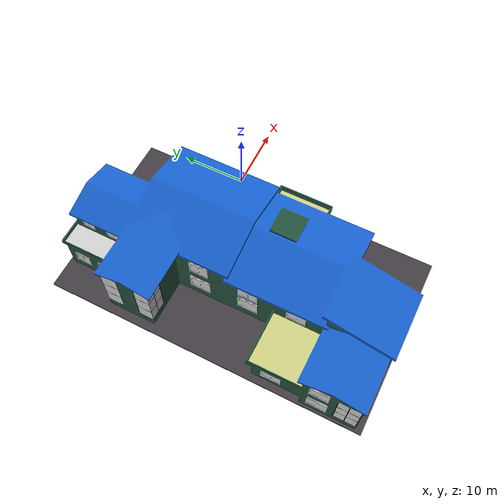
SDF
<?xml version="1.0" ?>
<sdf version="1.6">
  <model name="IEAen3Dgazebo">
    <static>true</static>
    <link name="link">
      <collision name="collision">
        <geometry>
          <mesh>
            <uri>model://IEAen3Dgazebo/meshes/IEAen3Dgazebo.dae</uri>
          </mesh>
        </geometry>
      </collision>
      <visual name="visual">
        <geometry>
          <mesh>
            <uri>model://IEAen3Dgazebo/meshes/IEAen3Dgazebo.dae</uri>
          </mesh>
        </geometry>
      </visual>
    </link>
  </model>
</sdf>
